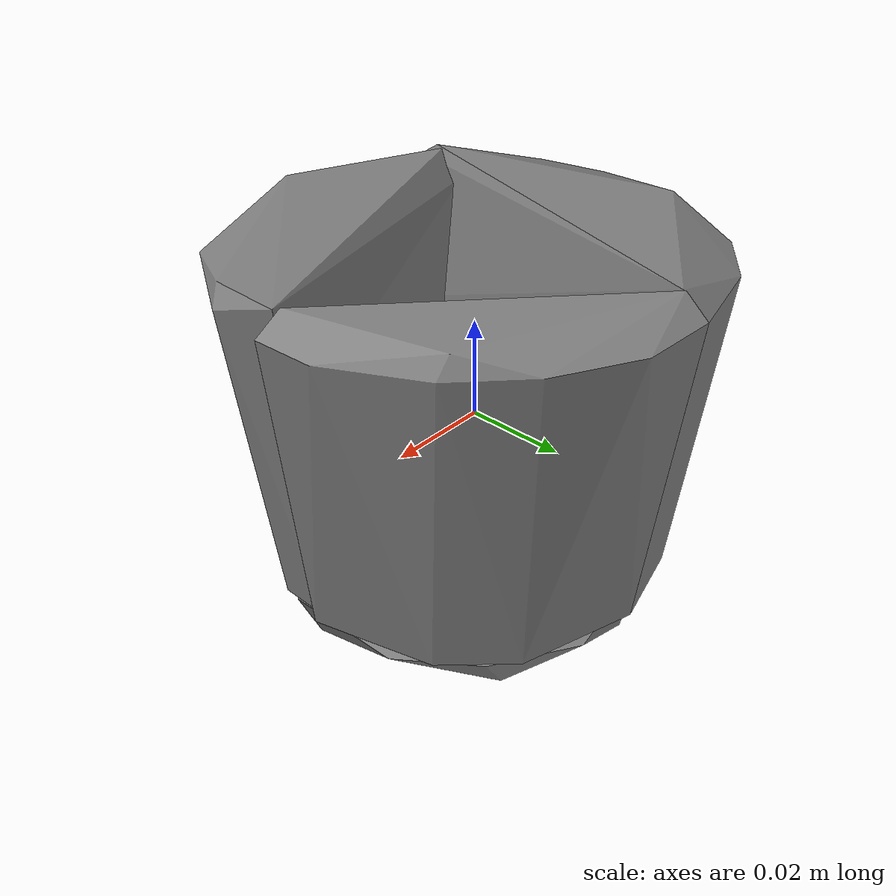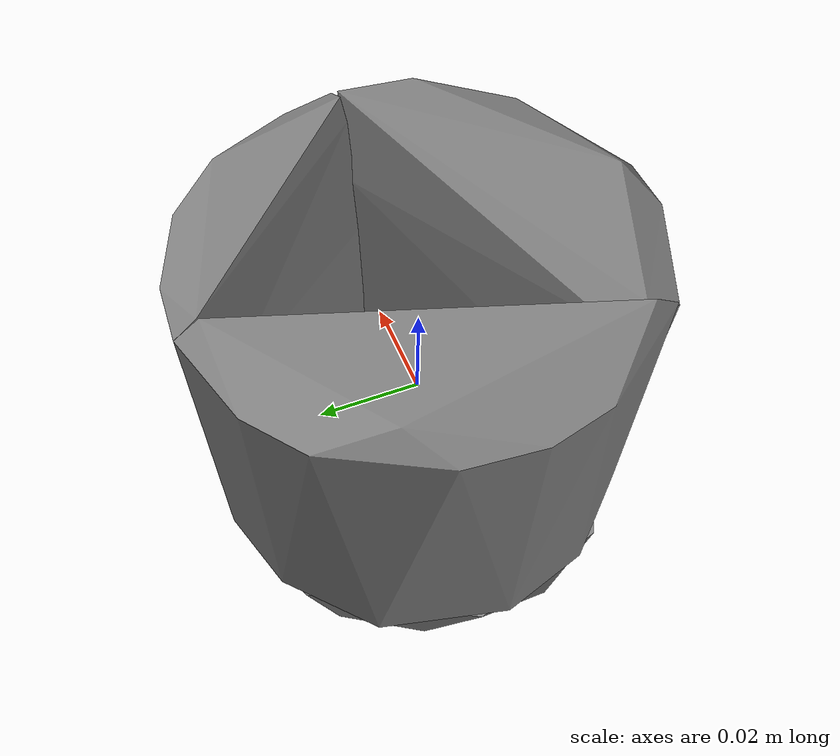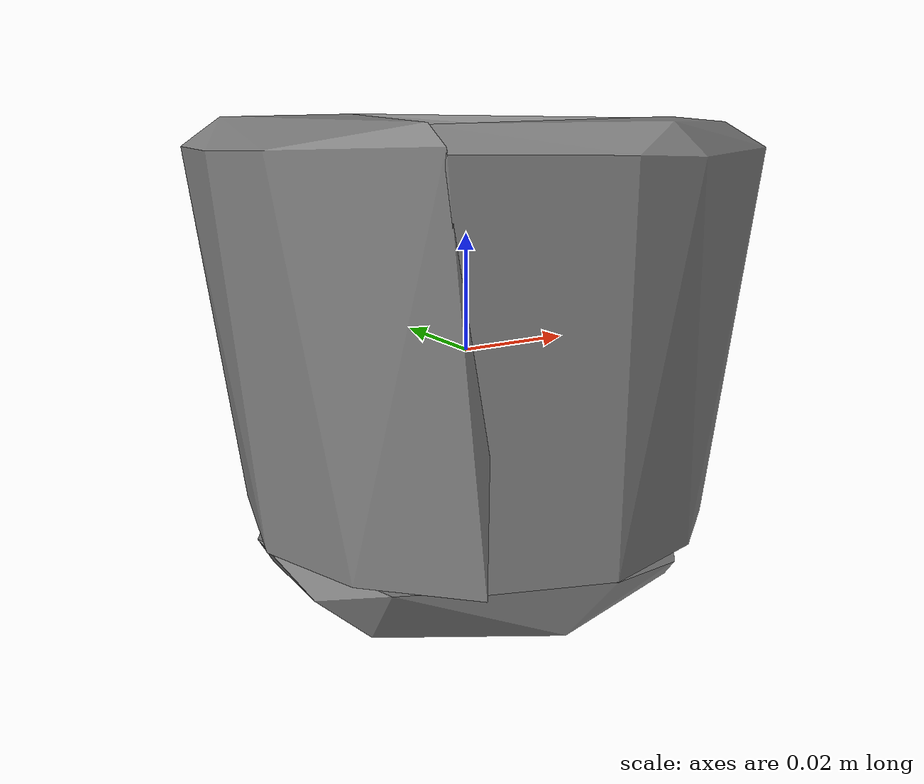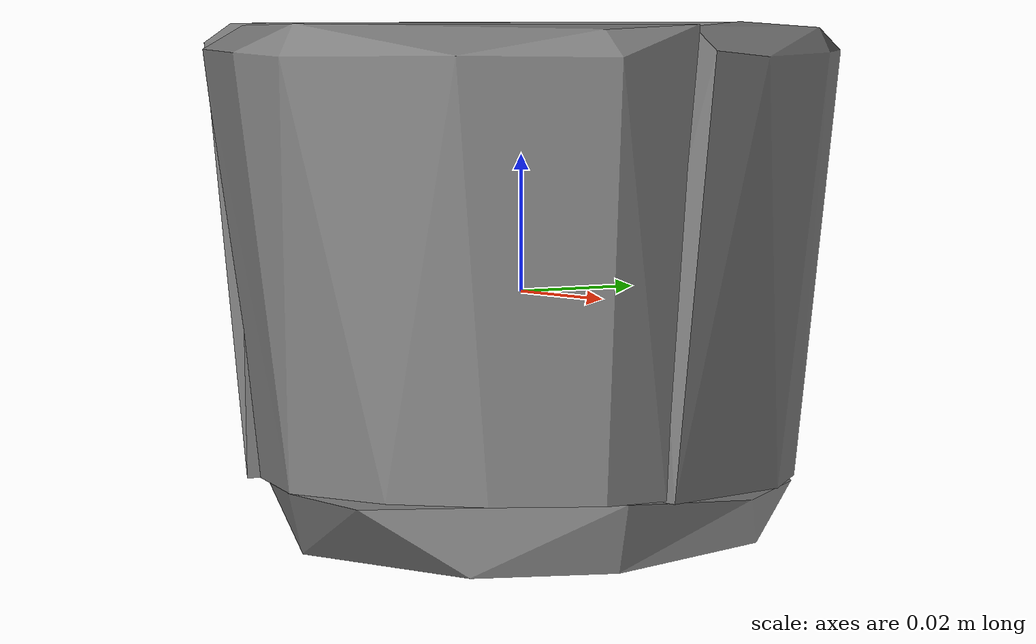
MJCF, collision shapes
<mujoco model="h_cups">
  <compiler angle="radian" />

  <asset>
    <mesh name="h_cups_visual_mesh" file="h_cups/textured.obj" />
    <mesh name="h_cups_collision_mesh_0" file="h_cups/textured_coacd_0.stl" />
    <mesh name="h_cups_collision_mesh_1" file="h_cups/textured_coacd_1.stl" />
    <mesh name="h_cups_collision_mesh_2" file="h_cups/textured_coacd_2.stl" />
    <mesh name="h_cups_collision_mesh_3" file="h_cups/textured_coacd_3.stl" />
    <texture name="h_cups_texture" type="2d" file="h_cups/texture_map.png" />
    <material name="h_cups_material" texture="h_cups_texture" />
  </asset>

  <worldbody>
    <body name="h_cups" pos="0 0 0" euler="0 0 0">
      <freejoint name="h_cups_joint" />
      <geom name="h_cups_visual_geom" type="mesh" mesh="h_cups_visual_mesh" material="h_cups_material" pos="-0.002535841918525972 -0.014808556940255405 -0.03593436586751651" euler="0 0 0" contype="0" conaffinity="0" group="0" />
      <geom name="h_cups_collision_geom_0" type="mesh" mesh="h_cups_collision_mesh_0" pos="-0.002535841918525972 -0.014808556940255405 -0.03593436586751651" euler="0 0 0" contype="1" conaffinity="1" group="3" />
      <geom name="h_cups_collision_geom_1" type="mesh" mesh="h_cups_collision_mesh_1" pos="-0.002535841918525972 -0.014808556940255405 -0.03593436586751651" euler="0 0 0" contype="1" conaffinity="1" group="3" />
      <geom name="h_cups_collision_geom_2" type="mesh" mesh="h_cups_collision_mesh_2" pos="-0.002535841918525972 -0.014808556940255405 -0.03593436586751651" euler="0 0 0" contype="1" conaffinity="1" group="3" />
      <geom name="h_cups_collision_geom_3" type="mesh" mesh="h_cups_collision_mesh_3" pos="-0.002535841918525972 -0.014808556940255405 -0.03593436586751651" euler="0 0 0" contype="1" conaffinity="1" group="3" />
      <inertial pos="0 0 0" euler="0 0 0" mass="0.031" diaginertia="0.001 0.001 0.001" />
    </body>
  </worldbody>
</mujoco>
